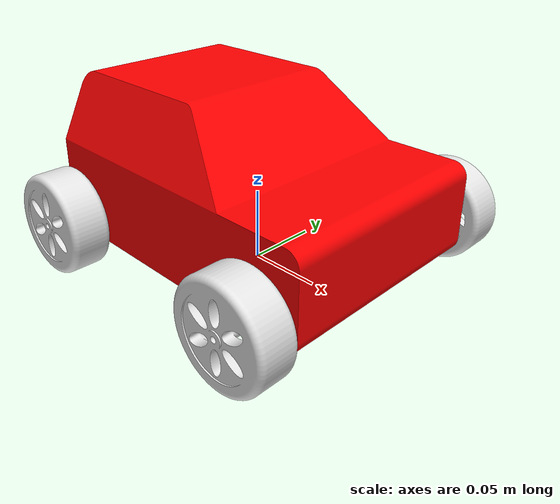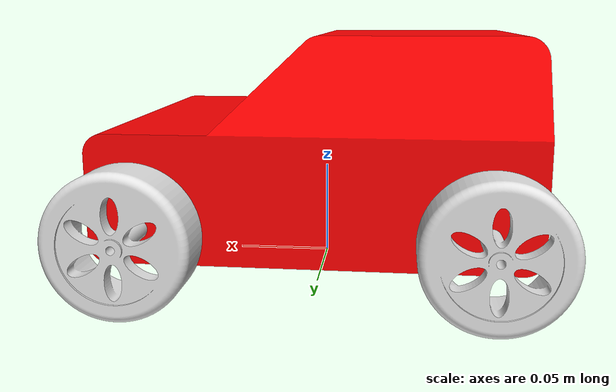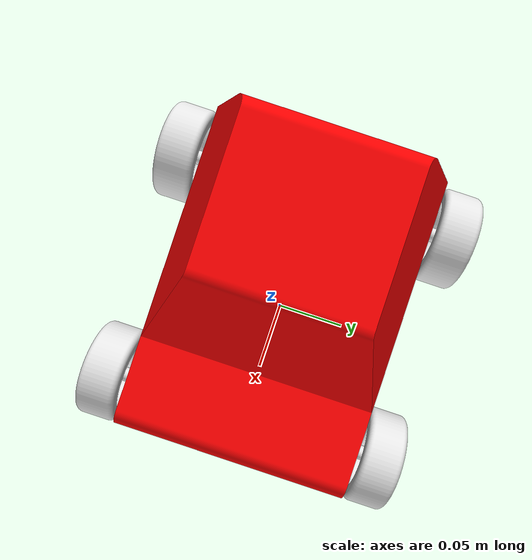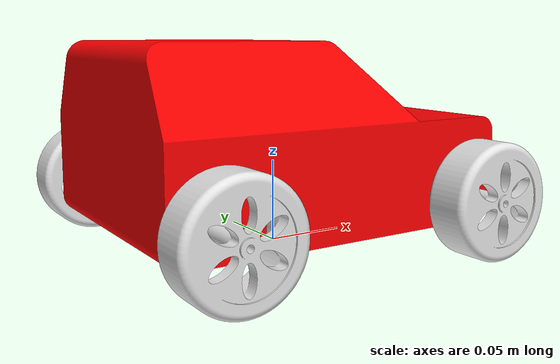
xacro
<?xml version="1.0" ?>

<robot xmlns:xacro="http://www.ros.org/wiki/xacro">

  <!-- Link base footprint -->
  <link name="base_footprint"/>
  <!-- Joint base footprint -->
  <joint name="base_joint" type="fixed">
      <parent link="base_footprint" />
      <child link="base_link" />
      <origin xyz="0 0 0.019" rpy="0 0 0" />
  </joint>

<!-- Link base_link -->
  <link name="base_link">
    <inertial>
      <origin xyz="-0.00178426 -0.000464244 0.021065" rpy="0 0 0"/>
      <mass value="1.56734"/>
      <inertia ixx="0.0042106" ixy="1.29827e-06" ixz="0.000258451" iyy="0.0071422" iyz="5.95559e-06" izz="0.00967847"/>
    </inertial>
    <!-- Part base_link -->
    <visual>
      <origin xyz="0 0 0" rpy="0 -0 0"/>
      <geometry>
        <mesh filename="package://slambot_description/assets/base_link.stl"/>
      </geometry>
      <material name="base_link_material">
        <color rgba="1 0 0 1"/>
      </material>
    </visual>
    <collision>
      <origin xyz="0 0 0" rpy="0 -0 0"/>
      <geometry>
        <mesh filename="package://slambot_description/assets/base_link.stl"/>
      </geometry>
    </collision>
  </link>

  <!-- Link rear_right_wheel_link -->
  <link name="rear_right_wheel_link">
    <inertial>
      <origin xyz="-9.27276e-19 2.38145e-18 0.0198476" rpy="0 0 0"/>
      <mass value="0.0642702"/>
      <inertia ixx="2.85888e-05" ixy="-1.90555e-11" ixz="0" iyy="2.85888e-05" iyz="0" izz="4.92789e-05"/>
    </inertial>
    <!-- Part rear_right_wheel_link -->
    <visual>
      <origin xyz="0 0 0.032" rpy="-1.5708 -0 0"/>
      <geometry>
        <mesh filename="package://slambot_description/assets/wheel_link.stl"/>
      </geometry>
      <material name="wheel_link_material">
        <color rgba="0.901961 0.901961 0.901961 1"/>
      </material>
    </visual>
    <collision>
      <origin xyz="0 0 0.032" rpy="-1.5708 -0 0"/>
      <geometry>
        <mesh filename="package://slambot_description/assets/wheel_link.stl"/>
      </geometry>
    </collision>
  </link>
  <!-- Joint from base_link to rear_right_wheel_link -->
  <joint name="rear_right_wheel_joint" type="continuous">
    <origin xyz="-0.0825 -0.08 0.015" rpy="1.5708 -0 0"/>
    <parent link="base_link"/>
    <child link="rear_right_wheel_link"/>
    <axis xyz="0 0 -1"/>
    <limit effort="100" velocity="100"/>
  </joint>

  <!-- Link front_right_wheel_link -->
  <link name="front_right_wheel_link">
    <inertial>
      <origin xyz="-9.27276e-19 -2.38145e-18 -0.0198476" rpy="0 0 0"/>
      <mass value="0.0642702"/>
      <inertia ixx="2.85888e-05" ixy="1.90555e-11" ixz="0" iyy="2.85888e-05" iyz="0" izz="4.92789e-05"/>
    </inertial>
    <!-- Part front_right_wheel_link -->
    <visual>
      <origin xyz="0 0 -0.032" rpy="1.5708 -0 0"/>
      <geometry>
        <mesh filename="package://slambot_description/assets/wheel_link.stl"/>
      </geometry>
      <material name="wheel_link_2_material">
        <color rgba="0.901961 0.901961 0.901961 1"/>
      </material>
    </visual>
    <collision>
      <origin xyz="0 0 -0.032" rpy="1.5708 -0 0"/>
      <geometry>
        <mesh filename="package://slambot_description/assets/wheel_link.stl"/>
      </geometry>
    </collision>
  </link>
  <!-- Joint from base_link to front_right_wheel_link -->
  <joint name="front_right_wheel_joint" type="continuous">
    <origin xyz="0.0825 -0.08 0.015" rpy="-1.5708 -0 0"/>
    <parent link="base_link"/>
    <child link="front_right_wheel_link"/>
    <axis xyz="0 0 1"/>
    <limit effort="100" velocity="100"/>
  </joint>

  <!-- Link front_left_wheel_link -->
  <link name="front_left_wheel_link">
    <inertial>
      <origin xyz="-9.27276e-19 -2.38145e-18 -0.0198476" rpy="0 0 0"/>
      <mass value="0.0642702"/>
      <inertia ixx="2.85888e-05" ixy="1.90555e-11" ixz="0" iyy="2.85888e-05" iyz="0" izz="4.92789e-05"/>
    </inertial>
    <!-- Part front_left_wheel_link -->
    <visual>
      <origin xyz="0 0 -0.032" rpy="1.5708 -0 0"/>
      <geometry>
        <mesh filename="package://slambot_description/assets/wheel_link.stl"/>
      </geometry>
      <material name="wheel_link_3_material">
        <color rgba="0.901961 0.901961 0.901961 1"/>
      </material>
    </visual>
    <collision>
      <origin xyz="0 0 -0.032" rpy="1.5708 -0 0"/>
      <geometry>
        <mesh filename="package://slambot_description/assets/wheel_link.stl"/>
      </geometry>
    </collision>
  </link>
  <!-- Joint from base_link to front_left_wheel_link -->
  <joint name="front_left_wheel_joint" type="continuous">
    <origin xyz="0.0825 0.08 0.015" rpy="1.5708 -0 0"/>
    <parent link="base_link"/>
    <child link="front_left_wheel_link"/>
    <axis xyz="0 0 -1"/>
    <limit effort="100" velocity="100"/>
  </joint>

  <!-- Link rear_left_wheel_link -->
  <link name="rear_left_wheel_link">
    <inertial>
      <origin xyz="-9.27276e-19 2.38145e-18 0.0198476" rpy="0 0 0"/>
      <mass value="0.0642702"/>
      <inertia ixx="2.85888e-05" ixy="-1.90555e-11" ixz="0" iyy="2.85888e-05" iyz="0" izz="4.92789e-05"/>
    </inertial>
    <!-- Part rear_left_wheel_link -->
    <visual>
      <origin xyz="0 0 0.032" rpy="-1.5708 -0 0"/>
      <geometry>
        <mesh filename="package://slambot_description/assets/wheel_link.stl"/>
      </geometry>
      <material name="wheel_link_4_material">
        <color rgba="0.901961 0.901961 0.901961 1"/>
      </material>
    </visual>
    <collision>
      <origin xyz="0 0 0.032" rpy="-1.5708 -0 0"/>
      <geometry>
        <mesh filename="package://slambot_description/assets/wheel_link.stl"/>
      </geometry>
    </collision>
  </link>
  <!-- Joint from base_link to rear_left_wheel_link -->
  <joint name="rear_left_wheel_joint" type="continuous">
    <origin xyz="-0.0825 0.08 0.015" rpy="-1.5708 -0 0"/>
    <parent link="base_link"/>
    <child link="rear_left_wheel_link"/>
    <axis xyz="0 0 1"/>
    <limit effort="100" velocity="100"/>
  </joint>

</robot>
